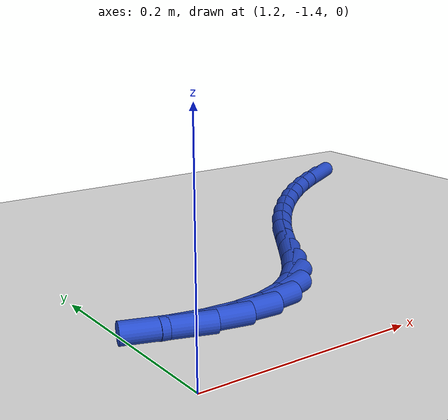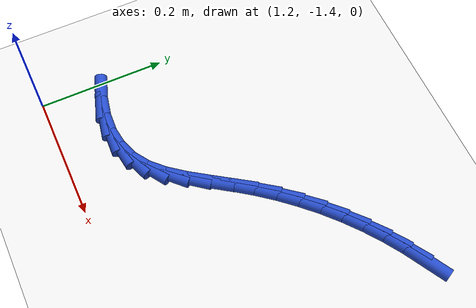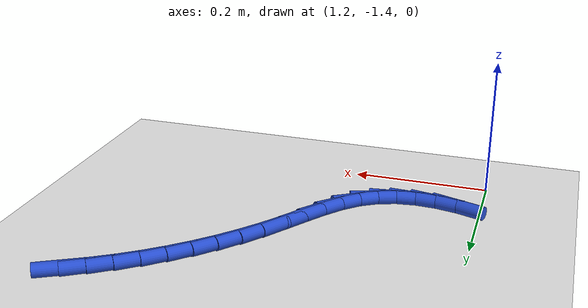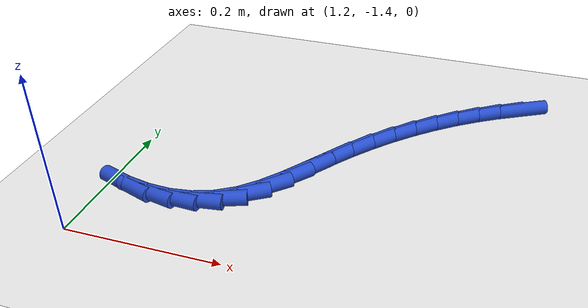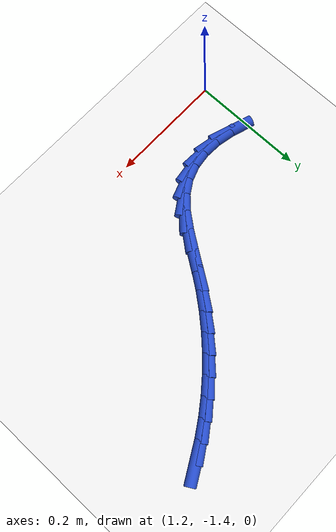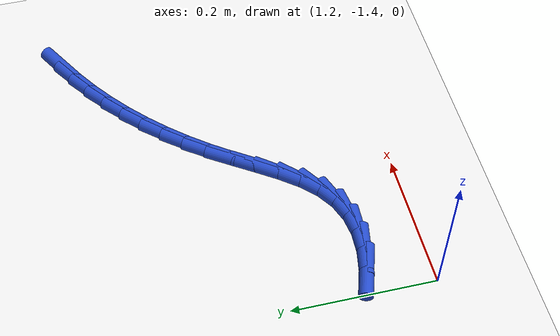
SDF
<sdf version="1.6">
 <world name="default">
  <model name="ground_plane">
   <static>1</static>
   <link name="link">
    <collision name="collision">
     <geometry><plane><normal>0 0 1</normal><size>100 100</size></plane></geometry>
     <surface><friction><ode><mu>100</mu><mu2>50</mu2></ode></friction></surface>
    </collision>
    <visual name="visual">
     <cast_shadows>0</cast_shadows>
     <geometry><plane><normal>0 0 1</normal><size>100 100</size></plane></geometry>
     <material>
      <script><uri>file://media/materials/scripts/gazebo.material</uri><name>Gazebo/WhiteGlow</name></script>
     </material>
    </visual>
   </link>
  </model>
  <model name="line">
   <link name="link_153">
    <pose>1.6755776103318563 -0.9792913157971944 0.01 0 1.57 0.5150447889302788</pose>
    <collision name="collision">
     <geometry><cylinder><radius>0.01</radius><length>0.08</length></cylinder></geometry>
    </collision>
    <visual name="visual">
     <material>
      <script><name>Gazebo/Blue</name><uri>file://media/materials/scripts/gazebo.material</uri></script>
     </material>
     <geometry><cylinder><radius>0.01</radius><length>0.08</length></cylinder></geometry>
    </visual>
   </link>
   <link name="link_154">
    <pose>1.6468068140216285 -0.9955756074592178 0.01 0 1.57 0.5739636926904814</pose>
    <collision name="collision">
     <geometry><cylinder><radius>0.01</radius><length>0.08</length></cylinder></geometry>
    </collision>
    <visual name="visual">
     <material>
      <script><name>Gazebo/Blue</name><uri>file://media/materials/scripts/gazebo.material</uri></script>
     </material>
     <geometry><cylinder><radius>0.01</radius><length>0.08</length></cylinder></geometry>
    </visual>
   </link>
   <link name="link_155">
    <pose>1.6188909869463242 -1.0136252823354923 0.01 0 1.57 0.63154716287322</pose>
    <collision name="collision">
     <geometry><cylinder><radius>0.01</radius><length>0.08</length></cylinder></geometry>
    </collision>
    <visual name="visual">
     <material>
      <script><name>Gazebo/Blue</name><uri>file://media/materials/scripts/gazebo.material</uri></script>
     </material>
     <geometry><cylinder><radius>0.01</radius><length>0.08</length></cylinder></geometry>
    </visual>
   </link>
   <link name="link_156">
    <pose>1.5918833534182202 -1.0333810166403996 0.01 0 1.57 0.6878400563484852</pose>
    <collision name="collision">
     <geometry><cylinder><radius>0.01</radius><length>0.08</length></cylinder></geometry>
    </collision>
    <visual name="visual">
     <material>
      <script><name>Gazebo/Blue</name><uri>file://media/materials/scripts/gazebo.material</uri></script>
     </material>
     <geometry><cylinder><radius>0.01</radius><length>0.08</length></cylinder></geometry>
    </visual>
   </link>
   <link name="link_157">
    <pose>1.565837137749592 -1.0547834865883228 0.01 0 1.57 0.742907514100915</pose>
    <collision name="collision">
     <geometry><cylinder><radius>0.01</radius><length>0.08</length></cylinder></geometry>
    </collision>
    <visual name="visual">
     <material>
      <script><name>Gazebo/Blue</name><uri>file://media/materials/scripts/gazebo.material</uri></script>
     </material>
     <geometry><cylinder><radius>0.01</radius><length>0.08</length></cylinder></geometry>
    </visual>
   </link>
   <link name="link_158">
    <pose>1.5408055642527183 -1.0777733683936424 0.01 0 1.57 0.7968300847804738</pose>
    <collision name="collision">
     <geometry><cylinder><radius>0.01</radius><length>0.08</length></cylinder></geometry>
    </collision>
    <visual name="visual">
     <material>
      <script><name>Gazebo/Blue</name><uri>file://media/materials/scripts/gazebo.material</uri></script>
     </material>
     <geometry><cylinder><radius>0.01</radius><length>0.08</length></cylinder></geometry>
    </visual>
   </link>
   <link name="link_159">
    <pose>1.5168418572398747 -1.1022913382707404 0.01 0 1.57 0.8496993155537427</pose>
    <collision name="collision">
     <geometry><cylinder><radius>0.01</radius><length>0.08</length></cylinder></geometry>
    </collision>
    <visual name="visual">
     <material>
      <script><name>Gazebo/Blue</name><uri>file://media/materials/scripts/gazebo.material</uri></script>
     </material>
     <geometry><cylinder><radius>0.01</radius><length>0.08</length></cylinder></geometry>
    </visual>
   </link>
   <link name="link_160">
    <pose>1.4939992410233387 -1.1282780724339994 0.01 0 1.57 0.9016138806395742</pose>
    <collision name="collision">
     <geometry><cylinder><radius>0.01</radius><length>0.08</length></cylinder></geometry>
    </collision>
    <visual name="visual">
     <material>
      <script><name>Gazebo/Blue</name><uri>file://media/materials/scripts/gazebo.material</uri></script>
     </material>
     <geometry><cylinder><radius>0.01</radius><length>0.08</length></cylinder></geometry>
    </visual>
   </link>
   <link name="link_161">
    <pose>1.472330939915386 -1.155674247097801 0.01 0 1.57 0.9524079838869229</pose>
    <collision name="collision">
     <geometry><cylinder><radius>0.01</radius><length>0.08</length></cylinder></geometry>
    </collision>
    <visual name="visual">
     <material>
      <script><name>Gazebo/Blue</name><uri>file://media/materials/scripts/gazebo.material</uri></script>
     </material>
     <geometry><cylinder><radius>0.01</radius><length>0.08</length></cylinder></geometry>
    </visual>
   </link>
   <link name="link_162">
    <pose>1.4518850974237854 -1.184411356776333 0.01 0 1.57 0.9851939791689247</pose>
    <collision name="collision">
     <geometry><cylinder><radius>0.01</radius><length>0.08</length></cylinder></geometry>
    </collision>
    <visual name="visual">
     <material>
      <script><name>Gazebo/Blue</name><uri>file://media/materials/scripts/gazebo.material</uri></script>
     </material>
     <geometry><cylinder><radius>0.01</radius><length>0.08</length></cylinder></geometry>
    </visual>
   </link>
   <link name="link_163">
    <pose>1.4323790676435264 -1.2138231148231051 0.01 0 1.57 0.9731270479797334</pose>
    <collision name="collision">
     <geometry><cylinder><radius>0.01</radius><length>0.08</length></cylinder></geometry>
    </collision>
    <visual name="visual">
     <material>
      <script><name>Gazebo/Blue</name><uri>file://media/materials/scripts/gazebo.material</uri></script>
     </material>
     <geometry><cylinder><radius>0.01</radius><length>0.08</length></cylinder></geometry>
    </visual>
   </link>
   <link name="link_164">
    <pose>1.4130019810667207 -1.242288663174821 0.01 0 1.57 0.9090407044694551</pose>
    <collision name="collision">
     <geometry><cylinder><radius>0.01</radius><length>0.08</length></cylinder></geometry>
    </collision>
    <visual name="visual">
     <material>
      <script><name>Gazebo/Blue</name><uri>file://media/materials/scripts/gazebo.material</uri></script>
     </material>
     <geometry><cylinder><radius>0.01</radius><length>0.08</length></cylinder></geometry>
    </visual>
   </link>
   <link name="link_165">
    <pose>1.3928956684350715 -1.268101666728692 0.01 0 1.57 0.7798455824113227</pose>
    <collision name="collision">
     <geometry><cylinder><radius>0.01</radius><length>0.08</length></cylinder></geometry>
    </collision>
    <visual name="visual">
     <material>
      <script><name>Gazebo/Blue</name><uri>file://media/materials/scripts/gazebo.material</uri></script>
     </material>
     <geometry><cylinder><radius>0.01</radius><length>0.08</length></cylinder></geometry>
    </visual>
   </link>
   <link name="link_166">
    <pose>1.371201960490282 -1.2895557903819324 0.01 0 1.57 0.5755075490792866</pose>
    <collision name="collision">
     <geometry><cylinder><radius>0.01</radius><length>0.08</length></cylinder></geometry>
    </collision>
    <visual name="visual">
     <material>
      <script><name>Gazebo/Blue</name><uri>file://media/materials/scripts/gazebo.material</uri></script>
     </material>
     <geometry><cylinder><radius>0.01</radius><length>0.08</length></cylinder></geometry>
    </visual>
   </link>
   <link name="link_167">
    <pose>1.3471744598736928 -1.3051440262431748 0.01 0 1.57 0.347693163011555</pose>
    <collision name="collision">
     <geometry><cylinder><radius>0.01</radius><length>0.08</length></cylinder></geometry>
    </collision>
    <visual name="visual">
     <material>
      <script><name>Gazebo/Blue</name><uri>file://media/materials/scripts/gazebo.material</uri></script>
     </material>
     <geometry><cylinder><radius>0.01</radius><length>0.08</length></cylinder></geometry>
    </visual>
   </link>
   <link name="link_168">
    <pose>1.320816590633143 -1.3146965523372578 0.01 0 1.57 0.13647756499045133</pose>
    <collision name="collision">
     <geometry><cylinder><radius>0.01</radius><length>0.08</length></cylinder></geometry>
    </collision>
    <visual name="visual">
     <material>
      <script><name>Gazebo/Blue</name><uri>file://media/materials/scripts/gazebo.material</uri></script>
     </material>
     <geometry><cylinder><radius>0.01</radius><length>0.08</length></cylinder></geometry>
    </visual>
   </link>
   <link name="link_169">
    <pose>1.2924401731402302 -1.318593521946017 0.01 0 1.57 -0.04573394549223196</pose>
    <collision name="collision">
     <geometry><cylinder><radius>0.01</radius><length>0.08</length></cylinder></geometry>
    </collision>
    <visual name="visual">
     <material>
      <script><name>Gazebo/Blue</name><uri>file://media/materials/scripts/gazebo.material</uri></script>
     </material>
     <geometry><cylinder><radius>0.01</radius><length>0.08</length></cylinder></geometry>
    </visual>
   </link>
   <link name="link_170">
    <pose>1.2623579788868475 -1.3172167845214036 0.01 0 1.57 -0.19658756209755124</pose>
    <collision name="collision">
     <geometry><cylinder><radius>0.01</radius><length>0.08</length></cylinder></geometry>
    </collision>
    <visual name="visual">
     <material>
      <script><name>Gazebo/Blue</name><uri>file://media/materials/scripts/gazebo.material</uri></script>
     </material>
     <geometry><cylinder><radius>0.01</radius><length>0.08</length></cylinder></geometry>
    </visual>
   </link>
   <link name="link_171">
    <pose>1.2308827793648887 -1.3109481895153696 0.01 0 1.57 -0.319725345412795</pose>
    <collision name="collision">
     <geometry><cylinder><radius>0.01</radius><length>0.08</length></cylinder></geometry>
    </collision>
    <visual name="visual">
     <material>
      <script><name>Gazebo/Blue</name><uri>file://media/materials/scripts/gazebo.material</uri></script>
     </material>
     <geometry><cylinder><radius>0.01</radius><length>0.08</length></cylinder></geometry>
    </visual>
   </link>
  </model>
 </world>
</sdf>
